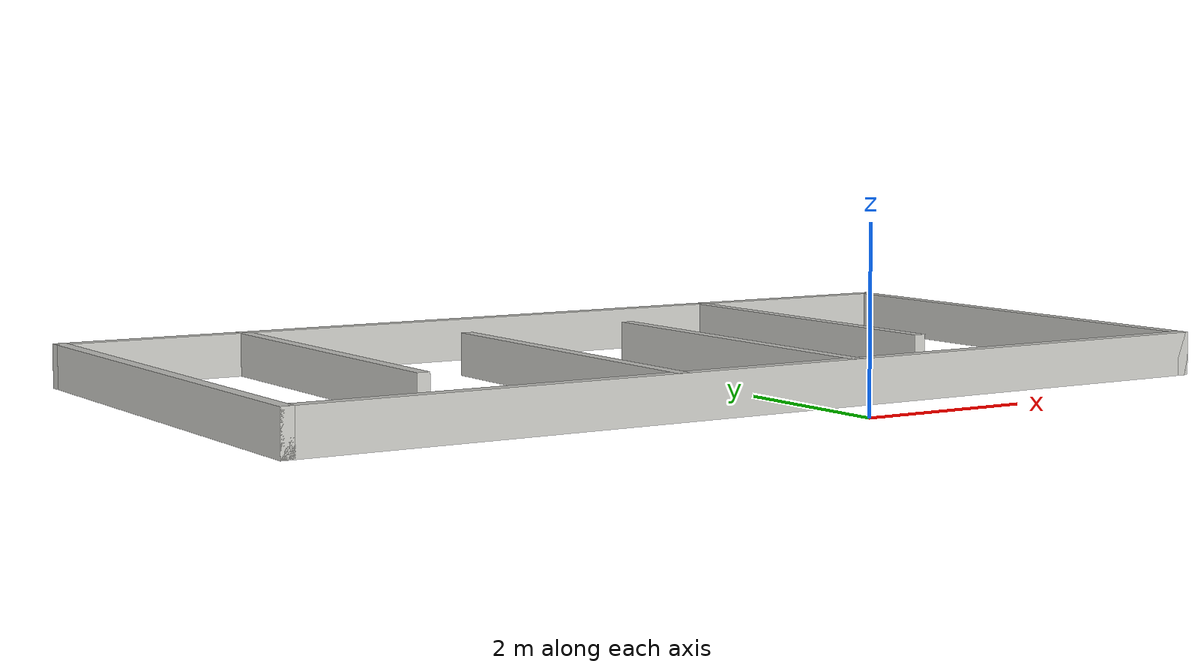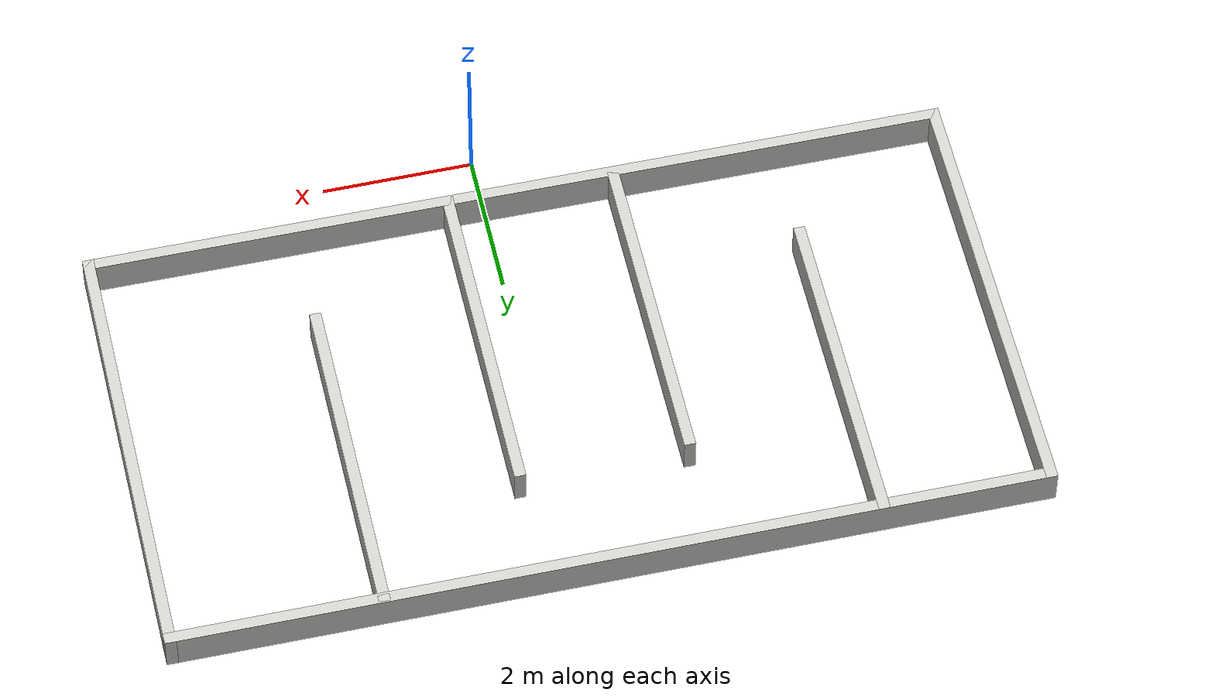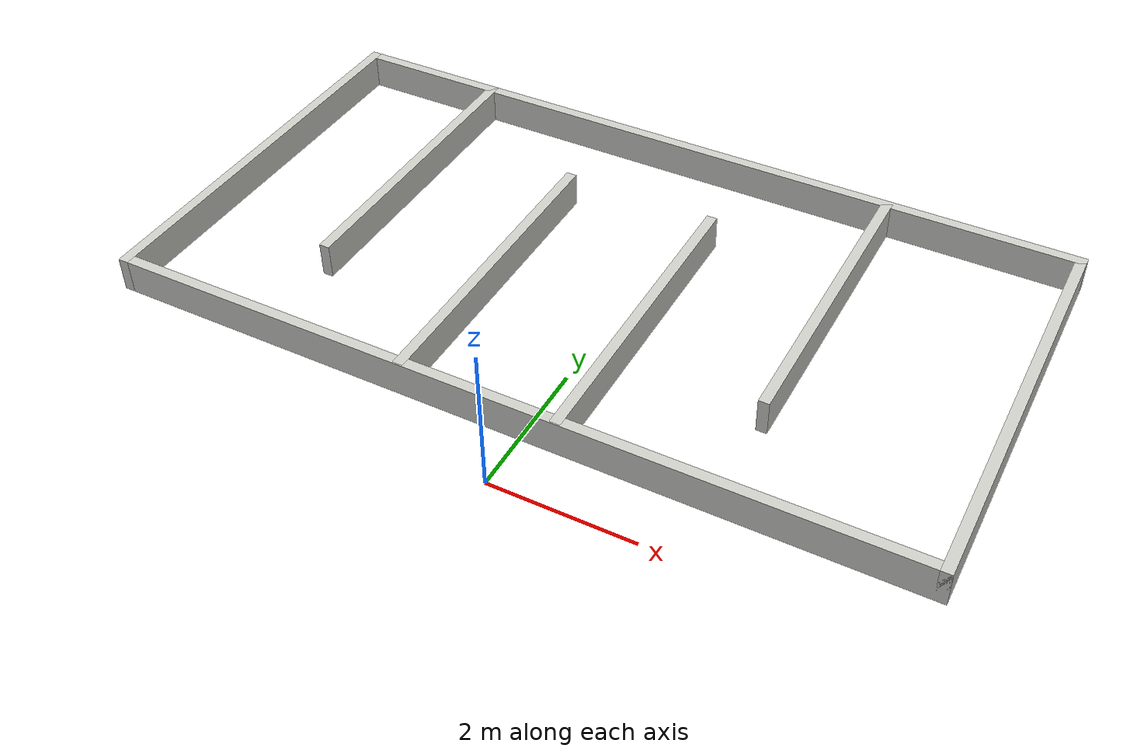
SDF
<?xml version='1.0'?>
<sdf version='1.6'>
  <model name='MapTest1'>
    <pose frame=''>-0.413 3.79 0 0 -0 0</pose>
    <link name='Wall_1'>
      <collision name='Wall_1_Collision'>
        <geometry>
          <box>
            <size>6 0.15 0.5</size>
          </box>
        </geometry>
        <pose frame=''>0 0 0.25 0 -0 0</pose>
      </collision>
      <visual name='Wall_1_Visual'>
        <pose frame=''>0 0 0.25 0 -0 0</pose>
        <geometry>
          <box>
            <size>6 0.15 0.5</size>
          </box>
        </geometry>
        <material>
          <script>
            <uri>file://media/materials/scripts/gazebo.material</uri>
            <name>Gazebo/CeilingTiled</name>
          </script>
          <ambient>1 1 1 1</ambient>
        </material>
      </visual>
      <pose frame=''>-5.675 0 0 0 0 -1.5708</pose>
    </link>
    <link name='Wall_11'>
      <collision name='Wall_11_Collision'>
        <geometry>
          <box>
            <size>4.5 0.15 0.5</size>
          </box>
        </geometry>
        <pose frame=''>0 0 0.25 0 -0 0</pose>
      </collision>
      <visual name='Wall_11_Visual'>
        <pose frame=''>0 0 0.25 0 -0 0</pose>
        <geometry>
          <box>
            <size>4.5 0.15 0.5</size>
          </box>
        </geometry>
        <material>
          <script>
            <uri>file://media/materials/scripts/gazebo.material</uri>
            <name>Gazebo/CeilingTiled</name>
          </script>
          <ambient>1 1 1 1</ambient>
        </material>
      </visual>
      <pose frame=''>-3.482 0.75 0 0 0 -1.5708</pose>
    </link>
    <link name='Wall_13'>
      <collision name='Wall_13_Collision'>
        <geometry>
          <box>
            <size>4.5 0.15 0.5</size>
          </box>
        </geometry>
        <pose frame=''>0 0 0.25 0 -0 0</pose>
      </collision>
      <visual name='Wall_13_Visual'>
        <pose frame=''>0 0 0.25 0 -0 0</pose>
        <geometry>
          <box>
            <size>4.5 0.15 0.5</size>
          </box>
        </geometry>
        <material>
          <script>
            <uri>file://media/materials/scripts/gazebo.material</uri>
            <name>Gazebo/CeilingTiled</name>
          </script>
          <ambient>1 1 1 1</ambient>
        </material>
      </visual>
      <pose frame=''>2.954 0.729 0 0 0 -1.5708</pose>
    </link>
    <link name='Wall_15'>
      <collision name='Wall_15_Collision'>
        <geometry>
          <box>
            <size>4.5 0.15 0.5</size>
          </box>
        </geometry>
        <pose frame=''>0 0 0.25 0 -0 0</pose>
      </collision>
      <visual name='Wall_15_Visual'>
        <pose frame=''>0 0 0.25 0 -0 0</pose>
        <geometry>
          <box>
            <size>4.5 0.15 0.5</size>
          </box>
        </geometry>
        <material>
          <script>
            <uri>file://media/materials/scripts/gazebo.material</uri>
            <name>Gazebo/CeilingTiled</name>
          </script>
          <ambient>1 1 1 1</ambient>
        </material>
      </visual>
      <pose frame=''>-1.31 -0.733 0 0 -0 1.5708</pose>
    </link>
    <link name='Wall_17'>
      <collision name='Wall_17_Collision'>
        <geometry>
          <box>
            <size>4.5 0.15 0.5</size>
          </box>
        </geometry>
        <pose frame=''>0 0 0.25 0 -0 0</pose>
      </collision>
      <visual name='Wall_17_Visual'>
        <pose frame=''>0 0 0.25 0 -0 0</pose>
        <geometry>
          <box>
            <size>4.5 0.15 0.5</size>
          </box>
        </geometry>
        <material>
          <script>
            <uri>file://media/materials/scripts/gazebo.material</uri>
            <name>Gazebo/CeilingTiled</name>
          </script>
          <ambient>1 1 1 1</ambient>
        </material>
      </visual>
      <pose frame=''>0.903 -0.733 0 0 -0 1.5708</pose>
    </link>
    <link name='Wall_2'>
      <collision name='Wall_2_Collision'>
        <geometry>
          <box>
            <size>11.5 0.15 0.5</size>
          </box>
        </geometry>
        <pose frame=''>0 0 0.25 0 -0 0</pose>
      </collision>
      <visual name='Wall_2_Visual'>
        <pose frame=''>0 0 0.25 0 -0 0</pose>
        <geometry>
          <box>
            <size>11.5 0.15 0.5</size>
          </box>
        </geometry>
        <material>
          <script>
            <uri>file://media/materials/scripts/gazebo.material</uri>
            <name>Gazebo/CeilingTiled</name>
          </script>
          <ambient>1 1 1 1</ambient>
        </material>
      </visual>
      <pose frame=''>0 -2.925 0 0 -0 0</pose>
    </link>
    <link name='Wall_3'>
      <collision name='Wall_3_Collision'>
        <geometry>
          <box>
            <size>6 0.15 0.5</size>
          </box>
        </geometry>
        <pose frame=''>0 0 0.25 0 -0 0</pose>
      </collision>
      <visual name='Wall_3_Visual'>
        <pose frame=''>0 0 0.25 0 -0 0</pose>
        <geometry>
          <box>
            <size>6 0.15 0.5</size>
          </box>
        </geometry>
        <material>
          <script>
            <uri>file://media/materials/scripts/gazebo.material</uri>
            <name>Gazebo/CeilingTiled</name>
          </script>
          <ambient>1 1 1 1</ambient>
        </material>
      </visual>
      <pose frame=''>5.675 0 0 0 -0 1.5708</pose>
    </link>
    <link name='Wall_4'>
      <collision name='Wall_4_Collision'>
        <geometry>
          <box>
            <size>11.5 0.15 0.5</size>
          </box>
        </geometry>
        <pose frame=''>0 0 0.25 0 -0 0</pose>
      </collision>
      <visual name='Wall_4_Visual'>
        <pose frame=''>0 0 0.25 0 -0 0</pose>
        <geometry>
          <box>
            <size>11.5 0.15 0.5</size>
          </box>
        </geometry>
        <material>
          <script>
            <uri>file://media/materials/scripts/gazebo.material</uri>
            <name>Gazebo/CeilingTiled</name>
          </script>
          <ambient>1 1 1 1</ambient>
        </material>
      </visual>
      <pose frame=''>0 2.925 0 0 -0 3.14159</pose>
    </link>
    <static>1</static>
  </model>
</sdf>
